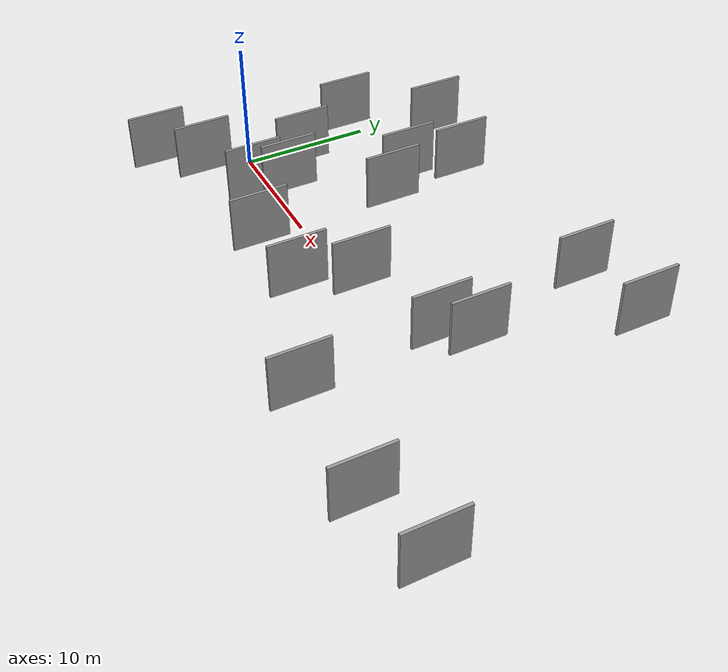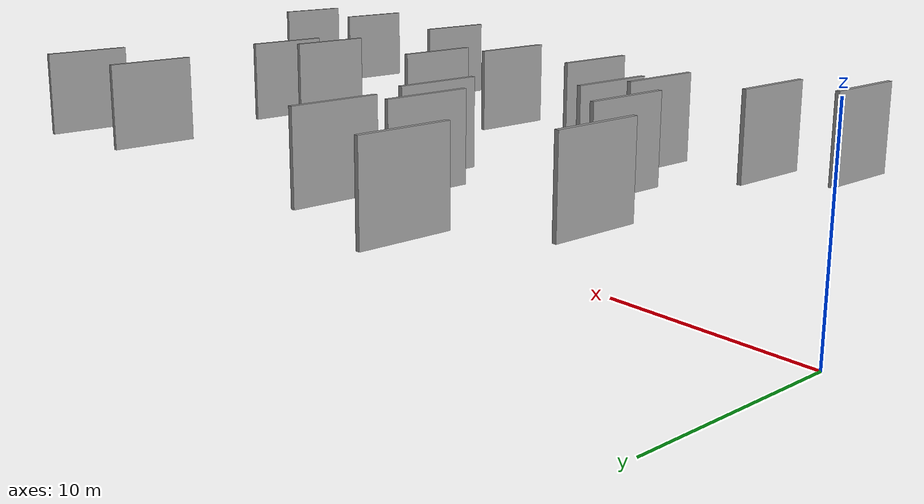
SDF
<sdf version="1.6">
 <world name="default">
  <scene>
   <sky><clouds><speed>12</speed></clouds></sky>
   <ambient>0.4 0.4 0.4 1</ambient>
   <background>0.7 0.7 0.7 1</background>
   <shadows>1</shadows>
  </scene>
  <gravity>0 0 -9.8066</gravity>
  <magnetic_field>6e-06 2.3e-05 -4.2e-05</magnetic_field>
  <physics default="0" name="default_physics" type="ode">
   <ode>
    <solver>
     <type>quick</type>
     <iters>10</iters>
     <sor>1.0</sor>
     <use_dynamic_moi_rescaling>0</use_dynamic_moi_rescaling>
    </solver>
    <constraints>
     <cfm>0</cfm>
     <erp>0.2</erp>
     <contact_max_correcting_vel>100</contact_max_correcting_vel>
     <contact_surface_layer>0.001</contact_surface_layer>
    </constraints>
   </ode>
   <max_step_size>0.004</max_step_size>
   <real_time_factor>1</real_time_factor>
   <real_time_update_rate>250</real_time_update_rate>
  </physics>
  <light name="sun" type="directional">
   <pose>0 0 10 0 0 0</pose>
   <diffuse>0.8 0.8 0.8 1</diffuse>
   <specular>0.2 0.2 0.2 1</specular>
   <attenuation>
    <range>1000</range>
    <constant>0.9</constant>
    <linear>0.01</linear>
    <quadratic>0.001</quadratic>
   </attenuation>
   <direction>-0.5 0.1 -0.9</direction>
  </light>
  <model name="grey_wall_1">
   <static>1</static>
   <pose>11.4371 -1.2571 5.0 0.000000 0.000000 1.570796</pose>
   <link name="link">
    <pose>0 0 2.00 0 0 0</pose>
    <collision name="collision"><geometry><box><size>4.00 0.2 4.00</size></box></geometry></collision>
    <visual name="visual">
     <cast_shadows>0</cast_shadows>
     <geometry><box><size>4.00 0.2 4.00</size></box></geometry>
     <material>
      <script>
       <uri>model://grey_wall/materials/scripts</uri>
       <uri>model://grey_wall/materials/textures</uri>
       <name>vrc/grey_wall</name>
      </script>
     </material>
    </visual>
   </link>
  </model>
  <model name="grey_wall_2">
   <static>1</static>
   <pose>6.5516 -5.7283 5.0 0.000000 0.000000 1.570796</pose>
   <link name="link">
    <pose>0 0 2.00 0 0 0</pose>
    <collision name="collision"><geometry><box><size>4.00 0.2 4.00</size></box></geometry></collision>
    <visual name="visual">
     <cast_shadows>0</cast_shadows>
     <geometry><box><size>4.00 0.2 4.00</size></box></geometry>
     <material>
      <script>
       <uri>model://grey_wall/materials/scripts</uri>
       <uri>model://grey_wall/materials/textures</uri>
       <name>vrc/grey_wall</name>
      </script>
     </material>
    </visual>
   </link>
  </model>
  <model name="grey_wall_3">
   <static>1</static>
   <pose>23.3216 -1.6137 5.0 0.000000 0.000000 1.570796</pose>
   <link name="link">
    <pose>0 0 2.00 0 0 0</pose>
    <collision name="collision"><geometry><box><size>4.00 0.2 4.00</size></box></geometry></collision>
    <visual name="visual">
     <cast_shadows>0</cast_shadows>
     <geometry><box><size>4.00 0.2 4.00</size></box></geometry>
     <material>
      <script>
       <uri>model://grey_wall/materials/scripts</uri>
       <uri>model://grey_wall/materials/textures</uri>
       <name>vrc/grey_wall</name>
      </script>
     </material>
    </visual>
   </link>
  </model>
  <model name="grey_wall_4">
   <static>1</static>
   <pose>3.8793 -8.1965 5.0 0.000000 0.000000 1.570796</pose>
   <link name="link">
    <pose>0 0 2.00 0 0 0</pose>
    <collision name="collision"><geometry><box><size>4.00 0.2 4.00</size></box></geometry></collision>
    <visual name="visual">
     <cast_shadows>0</cast_shadows>
     <geometry><box><size>4.00 0.2 4.00</size></box></geometry>
     <material>
      <script>
       <uri>model://grey_wall/materials/scripts</uri>
       <uri>model://grey_wall/materials/textures</uri>
       <name>vrc/grey_wall</name>
      </script>
     </material>
    </visual>
   </link>
  </model>
  <model name="grey_wall_5">
   <static>1</static>
   <pose>31.4496 2.0395 5.0 0.000000 0.000000 1.570796</pose>
   <link name="link">
    <pose>0 0 2.00 0 0 0</pose>
    <collision name="collision"><geometry><box><size>4.00 0.2 4.00</size></box></geometry></collision>
    <visual name="visual">
     <cast_shadows>0</cast_shadows>
     <geometry><box><size>4.00 0.2 4.00</size></box></geometry>
     <material>
      <script>
       <uri>model://grey_wall/materials/scripts</uri>
       <uri>model://grey_wall/materials/textures</uri>
       <name>vrc/grey_wall</name>
      </script>
     </material>
    </visual>
   </link>
  </model>
  <model name="grey_wall_6">
   <static>1</static>
   <pose>10.7914 -3.6174 5.0 0.000000 0.000000 1.570796</pose>
   <link name="link">
    <pose>0 0 2.00 0 0 0</pose>
    <collision name="collision"><geometry><box><size>4.00 0.2 4.00</size></box></geometry></collision>
    <visual name="visual">
     <cast_shadows>0</cast_shadows>
     <geometry><box><size>4.00 0.2 4.00</size></box></geometry>
     <material>
      <script>
       <uri>model://grey_wall/materials/scripts</uri>
       <uri>model://grey_wall/materials/textures</uri>
       <name>vrc/grey_wall</name>
      </script>
     </material>
    </visual>
   </link>
  </model>
  <model name="grey_wall_7">
   <static>1</static>
   <pose>29.9681 0.2866 5.0 0.000000 0.000000 1.570796</pose>
   <link name="link">
    <pose>0 0 2.00 0 0 0</pose>
    <collision name="collision"><geometry><box><size>4.00 0.2 4.00</size></box></geometry></collision>
    <visual name="visual">
     <cast_shadows>0</cast_shadows>
     <geometry><box><size>4.00 0.2 4.00</size></box></geometry>
     <material>
      <script>
       <uri>model://grey_wall/materials/scripts</uri>
       <uri>model://grey_wall/materials/textures</uri>
       <name>vrc/grey_wall</name>
      </script>
     </material>
    </visual>
   </link>
  </model>
  <model name="grey_wall_8">
   <static>1</static>
   <pose>39.1924 -9.5454 5.0 0.000000 0.000000 1.570796</pose>
   <link name="link">
    <pose>0 0 2.00 0 0 0</pose>
    <collision name="collision"><geometry><box><size>4.00 0.2 4.00</size></box></geometry></collision>
    <visual name="visual">
     <cast_shadows>0</cast_shadows>
     <geometry><box><size>4.00 0.2 4.00</size></box></geometry>
     <material>
      <script>
       <uri>model://grey_wall/materials/scripts</uri>
       <uri>model://grey_wall/materials/textures</uri>
       <name>vrc/grey_wall</name>
      </script>
     </material>
    </visual>
   </link>
  </model>
  <model name="grey_wall_9">
   <static>1</static>
   <pose>44.3393 -8.3039 5.0 0.000000 0.000000 1.570796</pose>
   <link name="link">
    <pose>0 0 2.00 0 0 0</pose>
    <collision name="collision"><geometry><box><size>4.00 0.2 4.00</size></box></geometry></collision>
    <visual name="visual">
     <cast_shadows>0</cast_shadows>
     <geometry><box><size>4.00 0.2 4.00</size></box></geometry>
     <material>
      <script>
       <uri>model://grey_wall/materials/scripts</uri>
       <uri>model://grey_wall/materials/textures</uri>
       <name>vrc/grey_wall</name>
      </script>
     </material>
    </visual>
   </link>
  </model>
  <model name="grey_wall_10">
   <static>1</static>
   <pose>34.6031 11.8181 5.0 0.000000 0.000000 1.570796</pose>
   <link name="link">
    <pose>0 0 2.00 0 0 0</pose>
    <collision name="collision"><geometry><box><size>4.00 0.2 4.00</size></box></geometry></collision>
    <visual name="visual">
     <cast_shadows>0</cast_shadows>
     <geometry><box><size>4.00 0.2 4.00</size></box></geometry>
     <material>
      <script>
       <uri>model://grey_wall/materials/scripts</uri>
       <uri>model://grey_wall/materials/textures</uri>
       <name>vrc/grey_wall</name>
      </script>
     </material>
    </visual>
   </link>
  </model>
  <model name="grey_wall_11">
   <static>1</static>
   <pose>29.2472 11.0323 5.0 0.000000 0.000000 1.570796</pose>
   <link name="link">
    <pose>0 0 2.00 0 0 0</pose>
    <collision name="collision"><geometry><box><size>4.00 0.2 4.00</size></box></geometry></collision>
    <visual name="visual">
     <cast_shadows>0</cast_shadows>
     <geometry><box><size>4.00 0.2 4.00</size></box></geometry>
     <material>
      <script>
       <uri>model://grey_wall/materials/scripts</uri>
       <uri>model://grey_wall/materials/textures</uri>
       <name>vrc/grey_wall</name>
      </script>
     </material>
    </visual>
   </link>
  </model>
  <model name="grey_wall_12">
   <static>1</static>
   <pose>15.1242 10.3962 5.0 0.000000 0.000000 1.570796</pose>
   <link name="link">
    <pose>0 0 2.00 0 0 0</pose>
    <collision name="collision"><geometry><box><size>4.00 0.2 4.00</size></box></geometry></collision>
    <visual name="visual">
     <cast_shadows>0</cast_shadows>
     <geometry><box><size>4.00 0.2 4.00</size></box></geometry>
     <material>
      <script>
       <uri>model://grey_wall/materials/scripts</uri>
       <uri>model://grey_wall/materials/textures</uri>
       <name>vrc/grey_wall</name>
      </script>
     </material>
    </visual>
   </link>
  </model>
  <model name="grey_wall_13">
   <static>1</static>
   <pose>13.9713 6.7724 5.0 0.000000 0.000000 1.570796</pose>
   <link name="link">
    <pose>0 0 2.00 0 0 0</pose>
    <collision name="collision"><geometry><box><size>4.00 0.2 4.00</size></box></geometry></collision>
    <visual name="visual">
     <cast_shadows>0</cast_shadows>
     <geometry><box><size>4.00 0.2 4.00</size></box></geometry>
     <material>
      <script>
       <uri>model://grey_wall/materials/scripts</uri>
       <uri>model://grey_wall/materials/textures</uri>
       <name>vrc/grey_wall</name>
      </script>
     </material>
    </visual>
   </link>
  </model>
  <model name="grey_wall_14">
   <static>1</static>
   <pose>16.2466 -5.4913 5.0 0.000000 0.000000 1.570796</pose>
   <link name="link">
    <pose>0 0 2.00 0 0 0</pose>
    <collision name="collision"><geometry><box><size>4.00 0.2 4.00</size></box></geometry></collision>
    <visual name="visual">
     <cast_shadows>0</cast_shadows>
     <geometry><box><size>4.00 0.2 4.00</size></box></geometry>
     <material>
      <script>
       <uri>model://grey_wall/materials/scripts</uri>
       <uri>model://grey_wall/materials/textures</uri>
       <name>vrc/grey_wall</name>
      </script>
     </material>
    </visual>
   </link>
  </model>
  <model name="grey_wall_15">
   <static>1</static>
   <pose>9.3049 11.5995 5.0 0.000000 0.000000 1.570796</pose>
   <link name="link">
    <pose>0 0 2.00 0 0 0</pose>
    <collision name="collision"><geometry><box><size>4.00 0.2 4.00</size></box></geometry></collision>
    <visual name="visual">
     <cast_shadows>0</cast_shadows>
     <geometry><box><size>4.00 0.2 4.00</size></box></geometry>
     <material>
      <script>
       <uri>model://grey_wall/materials/scripts</uri>
       <uri>model://grey_wall/materials/textures</uri>
       <name>vrc/grey_wall</name>
      </script>
     </material>
    </visual>
   </link>
  </model>
  <model name="grey_wall_16">
   <static>1</static>
   <pose>5.6986 5.9266 5.0 0.000000 0.000000 1.570796</pose>
   <link name="link">
    <pose>0 0 2.00 0 0 0</pose>
    <collision name="collision"><geometry><box><size>4.00 0.2 4.00</size></box></geometry></collision>
    <visual name="visual">
     <cast_shadows>0</cast_shadows>
     <geometry><box><size>4.00 0.2 4.00</size></box></geometry>
     <material>
      <script>
       <uri>model://grey_wall/materials/scripts</uri>
       <uri>model://grey_wall/materials/textures</uri>
       <name>vrc/grey_wall</name>
      </script>
     </material>
    </visual>
   </link>
  </model>
  <model name="grey_wall_17">
   <static>1</static>
   <pose>16.0326 4.4743 5.0 0.000000 0.000000 1.570796</pose>
   <link name="link">
    <pose>0 0 2.00 0 0 0</pose>
    <collision name="collision"><geometry><box><size>4.00 0.2 4.00</size></box></geometry></collision>
    <visual name="visual">
     <cast_shadows>0</cast_shadows>
     <geometry><box><size>4.00 0.2 4.00</size></box></geometry>
     <material>
      <script>
       <uri>model://grey_wall/materials/scripts</uri>
       <uri>model://grey_wall/materials/textures</uri>
       <name>vrc/grey_wall</name>
      </script>
     </material>
    </visual>
   </link>
  </model>
  <model name="grey_wall_18">
   <static>1</static>
   <pose>30.7179 -9.1550 5.0 0.000000 0.000000 1.570796</pose>
   <link name="link">
    <pose>0 0 2.00 0 0 0</pose>
    <collision name="collision"><geometry><box><size>4.00 0.2 4.00</size></box></geometry></collision>
    <visual name="visual">
     <cast_shadows>0</cast_shadows>
     <geometry><box><size>4.00 0.2 4.00</size></box></geometry>
     <material>
      <script>
       <uri>model://grey_wall/materials/scripts</uri>
       <uri>model://grey_wall/materials/textures</uri>
       <name>vrc/grey_wall</name>
      </script>
     </material>
    </visual>
   </link>
  </model>
  <model name="grey_wall_19">
   <static>1</static>
   <pose>21.7320 -5.2744 5.0 0.000000 0.000000 1.570796</pose>
   <link name="link">
    <pose>0 0 2.00 0 0 0</pose>
    <collision name="collision"><geometry><box><size>4.00 0.2 4.00</size></box></geometry></collision>
    <visual name="visual">
     <cast_shadows>0</cast_shadows>
     <geometry><box><size>4.00 0.2 4.00</size></box></geometry>
     <material>
      <script>
       <uri>model://grey_wall/materials/scripts</uri>
       <uri>model://grey_wall/materials/textures</uri>
       <name>vrc/grey_wall</name>
      </script>
     </material>
    </visual>
   </link>
  </model>
  <model name="grey_wall_20">
   <static>1</static>
   <pose>8.5860 1.0584 5.0 0.000000 0.000000 1.570796</pose>
   <link name="link">
    <pose>0 0 2.00 0 0 0</pose>
    <collision name="collision"><geometry><box><size>4.00 0.2 4.00</size></box></geometry></collision>
    <visual name="visual">
     <cast_shadows>0</cast_shadows>
     <geometry><box><size>4.00 0.2 4.00</size></box></geometry>
     <material>
      <script>
       <uri>model://grey_wall/materials/scripts</uri>
       <uri>model://grey_wall/materials/textures</uri>
       <name>vrc/grey_wall</name>
      </script>
     </material>
    </visual>
   </link>
  </model>
 </world>
</sdf>
